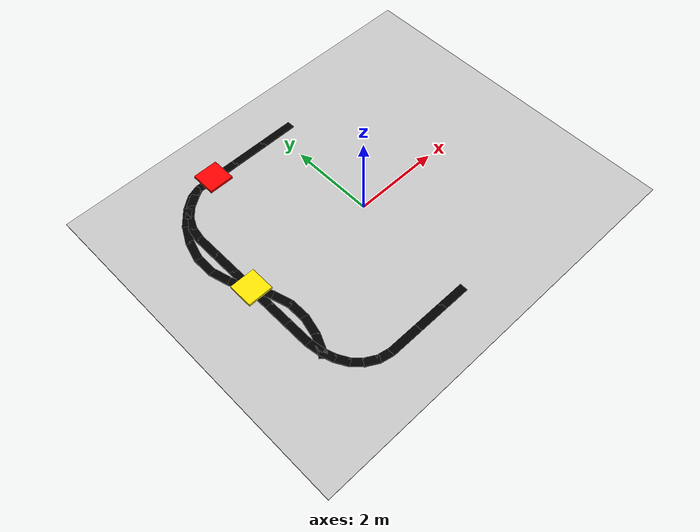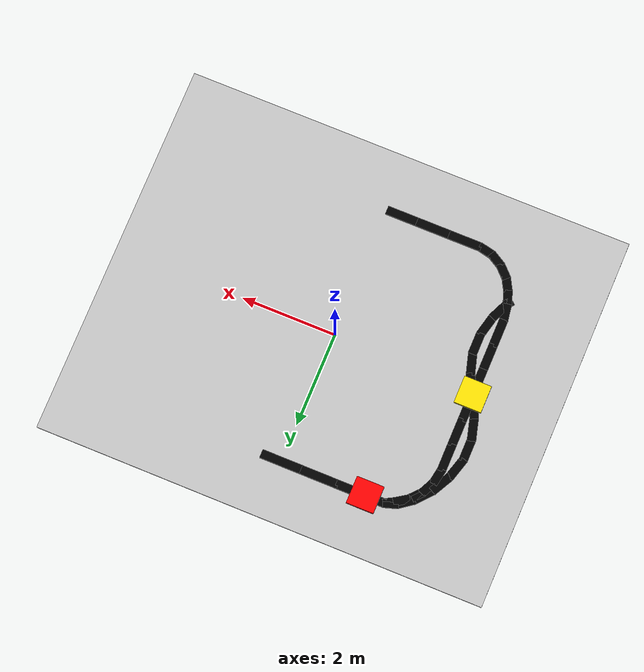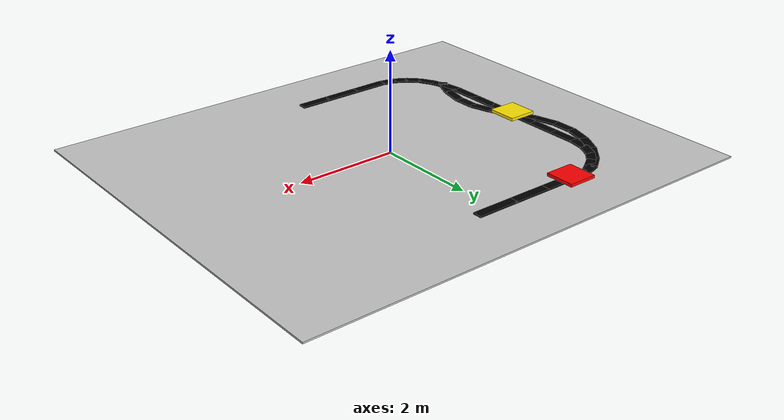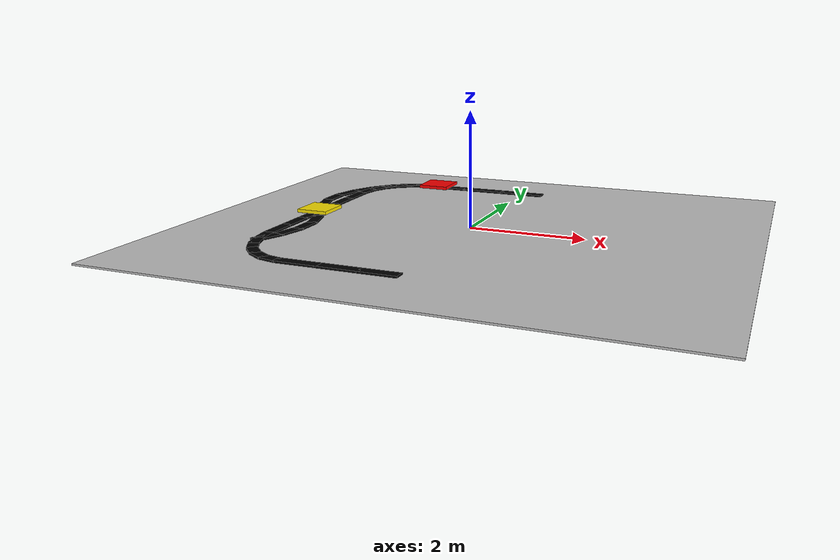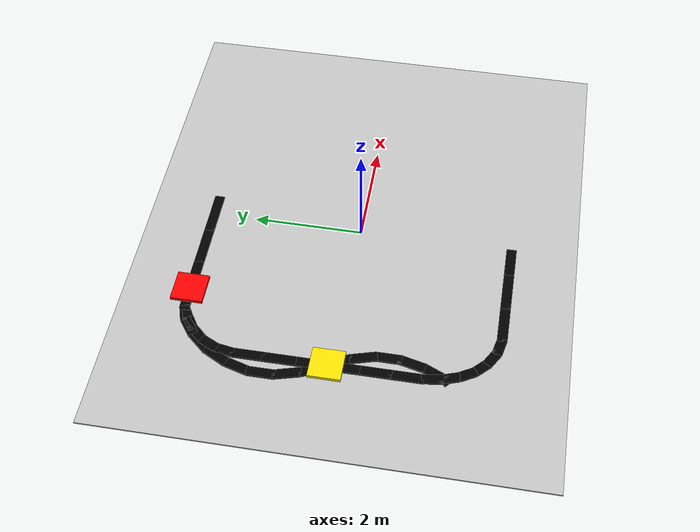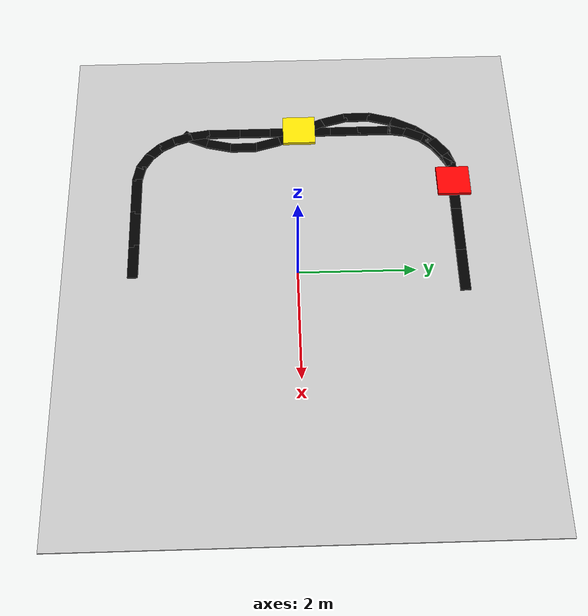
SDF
<sdf version="1.6">
 <world name="agv_factory_v6">
  <include><uri>model://sun</uri></include>
  <model name="factory_floor">
   <static>true</static>
   <pose>0.0000 0.0000 -0.0150 0 0 0.0000</pose>
   <link name="link">
    <collision name="collision"><geometry><box><size>9.5000 8.0000 0.0300</size></box></geometry></collision>
    <visual name="visual">
     <geometry><box><size>9.5000 8.0000 0.0300</size></box></geometry>
     <material><ambient>0.78 0.78 0.78 1.0</ambient><diffuse>0.78 0.78 0.78 1.0</diffuse></material>
    </visual>
   </link>
  </model>
  <model name="top_line_01">
   <static>true</static>
   <pose>-2.0000 2.8000 0.0150 0 0 0.0000</pose>
   <link name="link">
    <collision name="collision"><geometry><box><size>0.4500 0.1800 0.0300</size></box></geometry></collision>
    <visual name="visual">
     <geometry><box><size>0.4500 0.1800 0.0300</size></box></geometry>
     <material><ambient>0 0 0 1</ambient><diffuse>0 0 0 1</diffuse></material>
    </visual>
   </link>
  </model>
  <model name="top_line_02">
   <static>true</static>
   <pose>-1.5000 2.8000 0.0150 0 0 0.0000</pose>
   <link name="link">
    <collision name="collision"><geometry><box><size>0.6500 0.1800 0.0300</size></box></geometry></collision>
    <visual name="visual">
     <geometry><box><size>0.6500 0.1800 0.0300</size></box></geometry>
     <material><ambient>0 0 0 1</ambient><diffuse>0 0 0 1</diffuse></material>
    </visual>
   </link>
  </model>
  <model name="top_line_03">
   <static>true</static>
   <pose>-0.8000 2.8000 0.0150 0 0 0.0000</pose>
   <link name="link">
    <collision name="collision"><geometry><box><size>0.8500 0.1800 0.0300</size></box></geometry></collision>
    <visual name="visual">
     <geometry><box><size>0.8500 0.1800 0.0300</size></box></geometry>
     <material><ambient>0 0 0 1</ambient><diffuse>0 0 0 1</diffuse></material>
    </visual>
   </link>
  </model>
  <model name="top_line_04">
   <static>true</static>
   <pose>0.0000 2.8000 0.0150 0 0 0.0000</pose>
   <link name="link">
    <collision name="collision"><geometry><box><size>0.8500 0.1800 0.0300</size></box></geometry></collision>
    <visual name="visual">
     <geometry><box><size>0.8500 0.1800 0.0300</size></box></geometry>
     <material><ambient>0 0 0 1</ambient><diffuse>0 0 0 1</diffuse></material>
    </visual>
   </link>
  </model>
  <model name="bottom_line_04">
   <static>true</static>
   <pose>-0.3000 -2.8000 0.0150 0 0 3.1416</pose>
   <link name="link">
    <collision name="collision"><geometry><box><size>0.6500 0.1800 0.0300</size></box></geometry></collision>
    <visual name="visual">
     <geometry><box><size>0.6500 0.1800 0.0300</size></box></geometry>
     <material><ambient>0 0 0 1</ambient><diffuse>0 0 0 1</diffuse></material>
    </visual>
   </link>
  </model>
  <model name="bottom_line_05">
   <static>true</static>
   <pose>-0.9500 -2.8000 0.0150 0 0 3.1416</pose>
   <link name="link">
    <collision name="collision"><geometry><box><size>0.7500 0.1800 0.0300</size></box></geometry></collision>
    <visual name="visual">
     <geometry><box><size>0.7500 0.1800 0.0300</size></box></geometry>
     <material><ambient>0 0 0 1</ambient><diffuse>0 0 0 1</diffuse></material>
    </visual>
   </link>
  </model>
  <model name="bottom_line_06">
   <static>true</static>
   <pose>-1.6500 -2.8000 0.0150 0 0 3.1416</pose>
   <link name="link">
    <collision name="collision"><geometry><box><size>0.7500 0.1800 0.0300</size></box></geometry></collision>
    <visual name="visual">
     <geometry><box><size>0.7500 0.1800 0.0300</size></box></geometry>
     <material><ambient>0 0 0 1</ambient><diffuse>0 0 0 1</diffuse></material>
    </visual>
   </link>
  </model>
  <model name="bottom_left_curve_01">
   <static>true</static>
   <pose>-2.1400 -2.7700 0.0150 0 0 2.9305</pose>
   <link name="link">
    <collision name="collision"><geometry><box><size>0.3364 0.1800 0.0300</size></box></geometry></collision>
    <visual name="visual">
     <geometry><box><size>0.3364 0.1800 0.0300</size></box></geometry>
     <material><ambient>0 0 0 1</ambient><diffuse>0 0 0 1</diffuse></material>
    </visual>
   </link>
  </model>
  <model name="bottom_left_curve_02">
   <static>true</static>
   <pose>-2.4000 -2.6700 0.0150 0 0 2.6135</pose>
   <link name="link">
    <collision name="collision"><geometry><box><size>0.3278 0.1800 0.0300</size></box></geometry></collision>
    <visual name="visual">
     <geometry><box><size>0.3278 0.1800 0.0300</size></box></geometry>
     <material><ambient>0 0 0 1</ambient><diffuse>0 0 0 1</diffuse></material>
    </visual>
   </link>
  </model>
  <model name="bottom_left_curve_03">
   <static>true</static>
   <pose>-2.6200 -2.5000 0.0150 0 0 2.3562</pose>
   <link name="link">
    <collision name="collision"><geometry><box><size>0.3328 0.1800 0.0300</size></box></geometry></collision>
    <visual name="visual">
     <geometry><box><size>0.3328 0.1800 0.0300</size></box></geometry>
     <material><ambient>0 0 0 1</ambient><diffuse>0 0 0 1</diffuse></material>
    </visual>
   </link>
  </model>
  <model name="bottom_left_curve_04">
   <static>true</static>
   <pose>-2.7900 -2.2750 0.0150 0 0 2.0813</pose>
   <link name="link">
    <collision name="collision"><geometry><box><size>0.3365 0.1800 0.0300</size></box></geometry></collision>
    <visual name="visual">
     <geometry><box><size>0.3365 0.1800 0.0300</size></box></geometry>
     <material><ambient>0 0 0 1</ambient><diffuse>0 0 0 1</diffuse></material>
    </visual>
   </link>
  </model>
  <model name="bottom_left_curve_05">
   <static>true</static>
   <pose>-2.9050 -2.0150 0.0150 0 0 1.8925</pose>
   <link name="link">
    <collision name="collision"><geometry><box><size>0.3346 0.1800 0.0300</size></box></geometry></collision>
    <visual name="visual">
     <geometry><box><size>0.3346 0.1800 0.0300</size></box></geometry>
     <material><ambient>0 0 0 1</ambient><diffuse>0 0 0 1</diffuse></material>
    </visual>
   </link>
  </model>
  <model name="bottom_left_curve_06">
   <static>true</static>
   <pose>-2.9750 -1.7150 0.0150 0 0 1.7212</pose>
   <link name="link">
    <collision name="collision"><geometry><box><size>0.3838 0.1800 0.0300</size></box></geometry></collision>
    <visual name="visual">
     <geometry><box><size>0.3838 0.1800 0.0300</size></box></geometry>
     <material><ambient>0 0 0 1</ambient><diffuse>0 0 0 1</diffuse></material>
    </visual>
   </link>
  </model>
  <model name="left_main_vertical_01">
   <static>true</static>
   <pose>-3.0000 -1.2750 0.0150 0 0 1.5708</pose>
   <link name="link">
    <collision name="collision"><geometry><box><size>0.6000 0.1800 0.0300</size></box></geometry></collision>
    <visual name="visual">
     <geometry><box><size>0.6000 0.1800 0.0300</size></box></geometry>
     <material><ambient>0 0 0 1</ambient><diffuse>0 0 0 1</diffuse></material>
    </visual>
   </link>
  </model>
  <model name="left_main_vertical_02">
   <static>true</static>
   <pose>-3.0000 -0.7250 0.0150 0 0 1.5708</pose>
   <link name="link">
    <collision name="collision"><geometry><box><size>0.6000 0.1800 0.0300</size></box></geometry></collision>
    <visual name="visual">
     <geometry><box><size>0.6000 0.1800 0.0300</size></box></geometry>
     <material><ambient>0 0 0 1</ambient><diffuse>0 0 0 1</diffuse></material>
    </visual>
   </link>
  </model>
  <model name="left_main_vertical_03">
   <static>true</static>
   <pose>-3.0000 -0.1750 0.0150 0 0 1.5708</pose>
   <link name="link">
    <collision name="collision"><geometry><box><size>0.6000 0.1800 0.0300</size></box></geometry></collision>
    <visual name="visual">
     <geometry><box><size>0.6000 0.1800 0.0300</size></box></geometry>
     <material><ambient>0 0 0 1</ambient><diffuse>0 0 0 1</diffuse></material>
    </visual>
   </link>
  </model>
  <model name="left_main_vertical_04">
   <static>true</static>
   <pose>-3.0000 0.3750 0.0150 0 0 1.5708</pose>
   <link name="link">
    <collision name="collision"><geometry><box><size>0.6000 0.1800 0.0300</size></box></geometry></collision>
    <visual name="visual">
     <geometry><box><size>0.6000 0.1800 0.0300</size></box></geometry>
     <material><ambient>0 0 0 1</ambient><diffuse>0 0 0 1</diffuse></material>
    </visual>
   </link>
  </model>
  <model name="left_main_vertical_05">
   <static>true</static>
   <pose>-3.0000 0.9250 0.0150 0 0 1.5708</pose>
   <link name="link">
    <collision name="collision"><geometry><box><size>0.6000 0.1800 0.0300</size></box></geometry></collision>
    <visual name="visual">
     <geometry><box><size>0.6000 0.1800 0.0300</size></box></geometry>
     <material><ambient>0 0 0 1</ambient><diffuse>0 0 0 1</diffuse></material>
    </visual>
   </link>
  </model>
  <model name="left_main_vertical_06">
   <static>true</static>
   <pose>-3.0000 1.4750 0.0150 0 0 1.5708</pose>
   <link name="link">
    <collision name="collision"><geometry><box><size>0.6000 0.1800 0.0300</size></box></geometry></collision>
    <visual name="visual">
     <geometry><box><size>0.6000 0.1800 0.0300</size></box></geometry>
     <material><ambient>0 0 0 1</ambient><diffuse>0 0 0 1</diffuse></material>
    </visual>
   </link>
  </model>
  <model name="top_left_curve_01">
   <static>true</static>
   <pose>-2.9750 1.9000 0.0150 0 0 1.4056</pose>
   <link name="link">
    <collision name="collision"><geometry><box><size>0.3541 0.1800 0.0300</size></box></geometry></collision>
    <visual name="visual">
     <geometry><box><size>0.3541 0.1800 0.0300</size></box></geometry>
     <material><ambient>0 0 0 1</ambient><diffuse>0 0 0 1</diffuse></material>
    </visual>
   </link>
  </model>
  <model name="top_left_curve_02">
   <static>true</static>
   <pose>-2.8850 2.1850 0.0150 0 0 1.1221</pose>
   <link name="link">
    <collision name="collision"><geometry><box><size>0.3497 0.1800 0.0300</size></box></geometry></collision>
    <visual name="visual">
     <geometry><box><size>0.3497 0.1800 0.0300</size></box></geometry>
     <material><ambient>0 0 0 1</ambient><diffuse>0 0 0 1</diffuse></material>
    </visual>
   </link>
  </model>
  <model name="top_left_curve_03">
   <static>true</static>
   <pose>-2.7200 2.4300 0.0150 0 0 0.8330</pose>
   <link name="link">
    <collision name="collision"><geometry><box><size>0.3473 0.1800 0.0300</size></box></geometry></collision>
    <visual name="visual">
     <geometry><box><size>0.3473 0.1800 0.0300</size></box></geometry>
     <material><ambient>0 0 0 1</ambient><diffuse>0 0 0 1</diffuse></material>
    </visual>
   </link>
  </model>
  <model name="top_left_curve_04">
   <static>true</static>
   <pose>-2.5000 2.6200 0.0150 0 0 0.5880</pose>
   <link name="link">
    <collision name="collision"><geometry><box><size>0.3384 0.1800 0.0300</size></box></geometry></collision>
    <visual name="visual">
     <geometry><box><size>0.3384 0.1800 0.0300</size></box></geometry>
     <material><ambient>0 0 0 1</ambient><diffuse>0 0 0 1</diffuse></material>
    </visual>
   </link>
  </model>
  <model name="top_left_curve_05">
   <static>true</static>
   <pose>-2.2900 2.7500 0.0150 0 0 0.5071</pose>
   <link name="link">
    <collision name="collision"><geometry><box><size>0.2559 0.1800 0.0300</size></box></geometry></collision>
    <visual name="visual">
     <geometry><box><size>0.2559 0.1800 0.0300</size></box></geometry>
     <material><ambient>0 0 0 1</ambient><diffuse>0 0 0 1</diffuse></material>
    </visual>
   </link>
  </model>
  <model name="left_upper_cross_01">
   <static>true</static>
   <pose>-2.3250 2.7600 0.0150 0 0 -2.8319</pose>
   <link name="link">
    <collision name="collision"><geometry><box><size>0.3125 0.1800 0.0300</size></box></geometry></collision>
    <visual name="visual">
     <geometry><box><size>0.3125 0.1800 0.0300</size></box></geometry>
     <material><ambient>0 0 0 1</ambient><diffuse>0 0 0 1</diffuse></material>
    </visual>
   </link>
  </model>
  <model name="left_upper_cross_02">
   <static>true</static>
   <pose>-2.5850 2.6200 0.0150 0 0 -2.5040</pose>
   <link name="link">
    <collision name="collision"><geometry><box><size>0.3860 0.1800 0.0300</size></box></geometry></collision>
    <visual name="visual">
     <geometry><box><size>0.3860 0.1800 0.0300</size></box></geometry>
     <material><ambient>0 0 0 1</ambient><diffuse>0 0 0 1</diffuse></material>
    </visual>
   </link>
  </model>
  <model name="left_upper_cross_03">
   <static>true</static>
   <pose>-2.8600 2.3600 0.0150 0 0 -2.2896</pose>
   <link name="link">
    <collision name="collision"><geometry><box><size>0.4752 0.1800 0.0300</size></box></geometry></collision>
    <visual name="visual">
     <geometry><box><size>0.4752 0.1800 0.0300</size></box></geometry>
     <material><ambient>0 0 0 1</ambient><diffuse>0 0 0 1</diffuse></material>
    </visual>
   </link>
  </model>
  <model name="left_upper_cross_04">
   <static>true</static>
   <pose>-3.1000 2.0100 0.0150 0 0 -2.0553</pose>
   <link name="link">
    <collision name="collision"><geometry><box><size>0.4794 0.1800 0.0300</size></box></geometry></collision>
    <visual name="visual">
     <geometry><box><size>0.4794 0.1800 0.0300</size></box></geometry>
     <material><ambient>0 0 0 1</ambient><diffuse>0 0 0 1</diffuse></material>
    </visual>
   </link>
  </model>
  <model name="left_upper_cross_05">
   <static>true</static>
   <pose>-3.2600 1.6100 0.0150 0 0 -1.8491</pose>
   <link name="link">
    <collision name="collision"><geometry><box><size>0.4868 0.1800 0.0300</size></box></geometry></collision>
    <visual name="visual">
     <geometry><box><size>0.4868 0.1800 0.0300</size></box></geometry>
     <material><ambient>0 0 0 1</ambient><diffuse>0 0 0 1</diffuse></material>
    </visual>
   </link>
  </model>
  <model name="left_upper_cross_06">
   <static>true</static>
   <pose>-3.3200 1.1800 0.0150 0 0 -1.5708</pose>
   <link name="link">
    <collision name="collision"><geometry><box><size>0.4900 0.1800 0.0300</size></box></geometry></collision>
    <visual name="visual">
     <geometry><box><size>0.4900 0.1800 0.0300</size></box></geometry>
     <material><ambient>0 0 0 1</ambient><diffuse>0 0 0 1</diffuse></material>
    </visual>
   </link>
  </model>
  <model name="left_upper_cross_07">
   <static>true</static>
   <pose>-3.2600 0.7400 0.0150 0 0 -1.3045</pose>
   <link name="link">
    <collision name="collision"><geometry><box><size>0.5061 0.1800 0.0300</size></box></geometry></collision>
    <visual name="visual">
     <geometry><box><size>0.5061 0.1800 0.0300</size></box></geometry>
     <material><ambient>0 0 0 1</ambient><diffuse>0 0 0 1</diffuse></material>
    </visual>
   </link>
  </model>
  <model name="left_upper_cross_08">
   <static>true</static>
   <pose>-3.1000 0.3100 0.0150 0 0 -1.1264</pose>
   <link name="link">
    <collision name="collision"><geometry><box><size>0.5152 0.1800 0.0300</size></box></geometry></collision>
    <visual name="visual">
     <geometry><box><size>0.5152 0.1800 0.0300</size></box></geometry>
     <material><ambient>0 0 0 1</ambient><diffuse>0 0 0 1</diffuse></material>
    </visual>
   </link>
  </model>
  <model name="left_lower_cross_01">
   <static>true</static>
   <pose>-2.9000 -0.0900 0.0150 0 0 -1.0863</pose>
   <link name="link">
    <collision name="collision"><geometry><box><size>0.4794 0.1800 0.0300</size></box></geometry></collision>
    <visual name="visual">
     <geometry><box><size>0.4794 0.1800 0.0300</size></box></geometry>
     <material><ambient>0 0 0 1</ambient><diffuse>0 0 0 1</diffuse></material>
    </visual>
   </link>
  </model>
  <model name="left_lower_cross_02">
   <static>true</static>
   <pose>-2.7400 -0.4900 0.0150 0 0 -1.2925</pose>
   <link name="link">
    <collision name="collision"><geometry><box><size>0.4868 0.1800 0.0300</size></box></geometry></collision>
    <visual name="visual">
     <geometry><box><size>0.4868 0.1800 0.0300</size></box></geometry>
     <material><ambient>0 0 0 1</ambient><diffuse>0 0 0 1</diffuse></material>
    </visual>
   </link>
  </model>
  <model name="left_lower_cross_03">
   <static>true</static>
   <pose>-2.6800 -0.9100 0.0150 0 0 -1.5708</pose>
   <link name="link">
    <collision name="collision"><geometry><box><size>0.4700 0.1800 0.0300</size></box></geometry></collision>
    <visual name="visual">
     <geometry><box><size>0.4700 0.1800 0.0300</size></box></geometry>
     <material><ambient>0 0 0 1</ambient><diffuse>0 0 0 1</diffuse></material>
    </visual>
   </link>
  </model>
  <model name="left_lower_cross_04">
   <static>true</static>
   <pose>-2.7300 -1.3300 0.0150 0 0 -1.8045</pose>
   <link name="link">
    <collision name="collision"><geometry><box><size>0.4817 0.1800 0.0300</size></box></geometry></collision>
    <visual name="visual">
     <geometry><box><size>0.4817 0.1800 0.0300</size></box></geometry>
     <material><ambient>0 0 0 1</ambient><diffuse>0 0 0 1</diffuse></material>
    </visual>
   </link>
  </model>
  <model name="left_lower_cross_05">
   <static>true</static>
   <pose>-2.8650 -1.7300 0.0150 0 0 -1.9915</pose>
   <link name="link">
    <collision name="collision"><geometry><box><size>0.4663 0.1800 0.0300</size></box></geometry></collision>
    <visual name="visual">
     <geometry><box><size>0.4663 0.1800 0.0300</size></box></geometry>
     <material><ambient>0 0 0 1</ambient><diffuse>0 0 0 1</diffuse></material>
    </visual>
   </link>
  </model>
  <model name="left_lower_cross_06">
   <static>true</static>
   <pose>-2.9750 -1.9500 0.0150 0 0 -2.2655</pose>
   <link name="link">
    <collision name="collision"><geometry><box><size>0.1281 0.1800 0.0300</size></box></geometry></collision>
    <visual name="visual">
     <geometry><box><size>0.1281 0.1800 0.0300</size></box></geometry>
     <material><ambient>0 0 0 1</ambient><diffuse>0 0 0 1</diffuse></material>
    </visual>
   </link>
  </model>
  <model name="red_square">
   <static>true</static>
   <pose>-1.8000 2.8000 0.0600 0 0 0.0000</pose>
   <link name="link">
    <collision name="collision"><geometry><box><size>0.5800 0.5800 0.0600</size></box></geometry></collision>
    <visual name="visual">
     <geometry><box><size>0.5800 0.5800 0.0600</size></box></geometry>
     <material><ambient>1.0 0.0 0.0 1.0</ambient><diffuse>1.0 0.0 0.0 1.0</diffuse></material>
    </visual>
   </link>
  </model>
  <model name="yellow_square">
   <static>true</static>
   <pose>-3.0000 0.1000 0.0600 0 0 0.0000</pose>
   <link name="link">
    <collision name="collision"><geometry><box><size>0.5800 0.5800 0.0600</size></box></geometry></collision>
    <visual name="visual">
     <geometry><box><size>0.5800 0.5800 0.0600</size></box></geometry>
     <material><ambient>1.0 0.9 0.0 1.0</ambient><diffuse>1.0 0.9 0.0 1.0</diffuse></material>
    </visual>
   </link>
  </model>
 </world>
</sdf>
